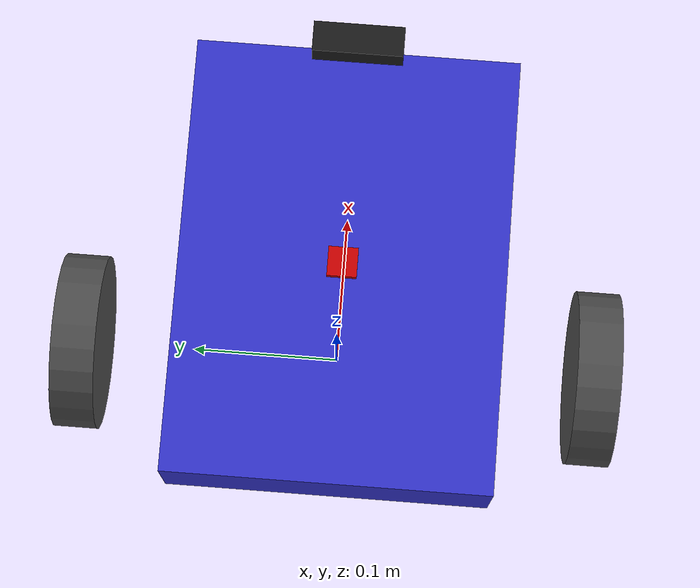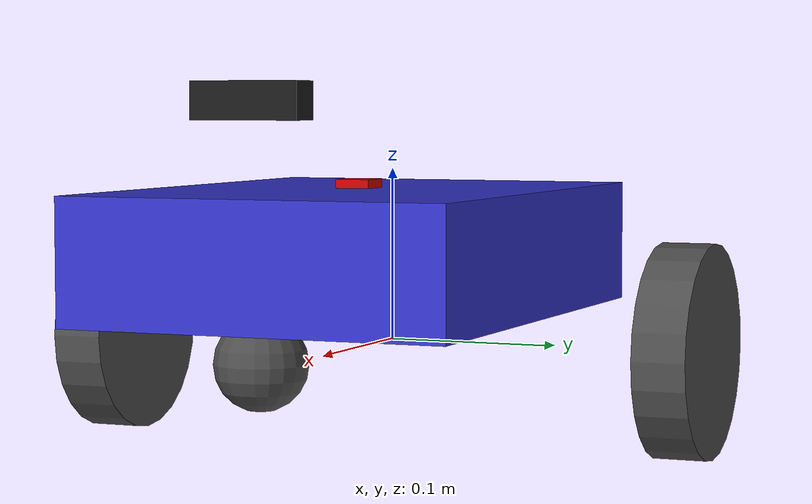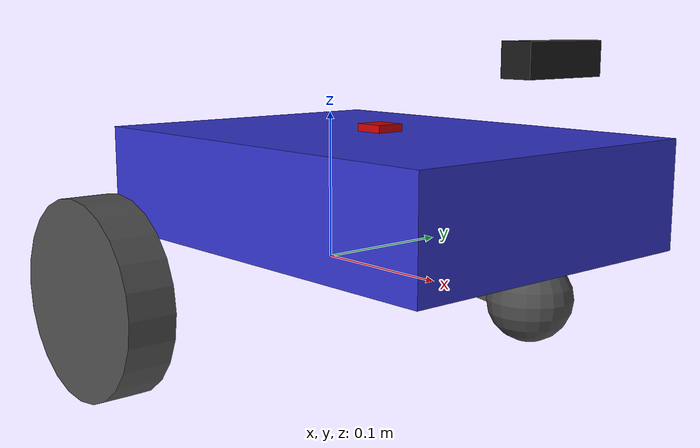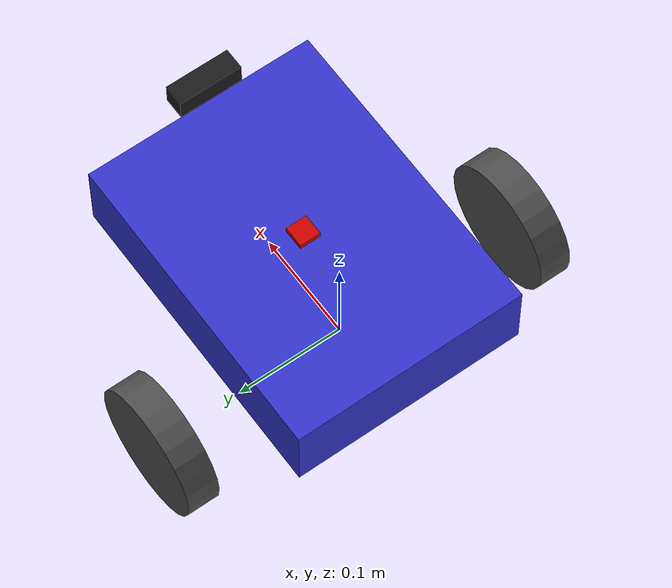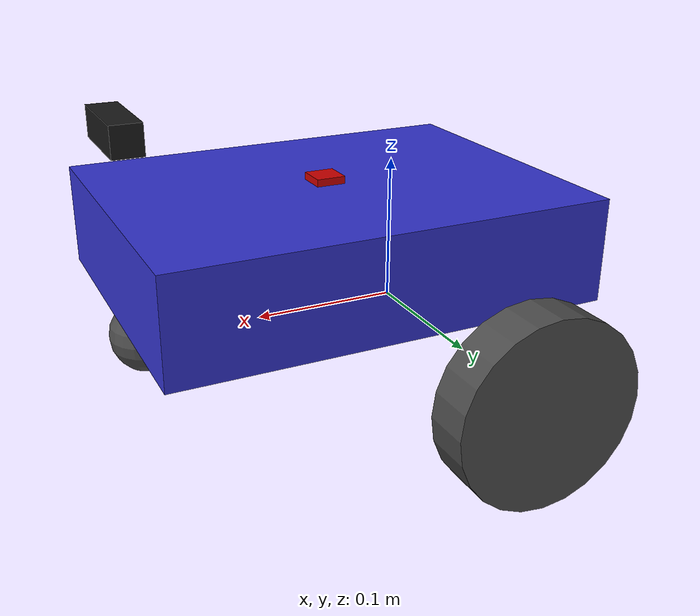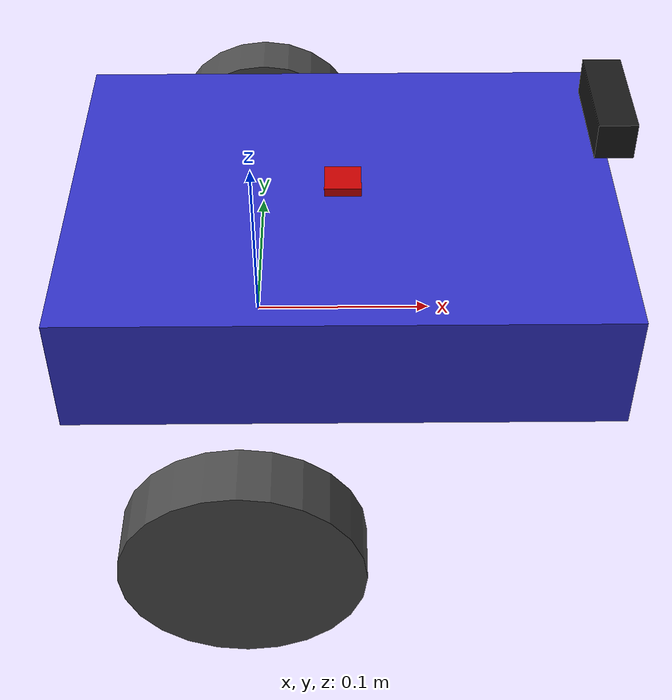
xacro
<?xml version="1.0"?>
<robot xmlns:xacro="http://www.ros.org/wiki/xacro" name="rover2">

  <!--
    Rover2 Simulation URDF
    This file combines the base robot description with Gazebo simulation plugins.
    Use this for Gazebo simulation.
  -->

  <!-- Robot parameters (must be defined before including other files) -->
  <xacro:property name="wheel_radius" value="0.06065"/>
  <xacro:property name="wheel_separation" value="0.356"/>

  <!-- Include base robot description -->
  <xacro:include filename="$(find rover2_description)/urdf/rover2.urdf.xacro"/>

  <!-- Include Gazebo plugins for simulation -->
  <xacro:include filename="$(find rover2_description)/urdf/rover2.gazebo.xacro"/>

</robot>

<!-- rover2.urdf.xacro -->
<robot xmlns:xacro="http://www.ros.org/wiki/xacro" name="rover2">

  <!-- Include macros -->
  <xacro:include filename="$(find rover2_description)/urdf/materials.xacro"/>
  <xacro:include filename="$(find rover2_description)/urdf/inertial_macros.xacro"/>

  <!-- ==================== PARAMETERS ==================== -->

  <!-- Wheel parameters (from Viam Rover 2 spec) -->
  <xacro:property name="wheel_radius" value="0.06065"/>      <!-- 121.3mm diameter / 2 -->
  <xacro:property name="wheel_width" value="0.03"/>          <!-- 30mm wheel width -->
  <xacro:property name="wheel_separation" value="0.356"/>    <!-- 356mm track width -->
  <xacro:property name="wheel_mass" value="0.2"/>            <!-- Estimated wheel mass -->

  <!-- Chassis parameters -->
  <xacro:property name="chassis_length" value="0.295"/>      <!-- 29.5cm -->
  <xacro:property name="chassis_width" value="0.22"/>        <!-- 22cm -->
  <xacro:property name="chassis_height" value="0.07"/>       <!-- 7cm -->
  <xacro:property name="chassis_mass" value="2.5"/>          <!-- Estimated total mass -->

  <!-- Chassis position relative to base_link (wheel axis center) -->
  <xacro:property name="chassis_x_offset" value="0.05"/>     <!-- Chassis center forward of wheel axis -->
  <xacro:property name="chassis_z_offset" value="0.02"/>     <!-- Chassis bottom above wheel axis -->

  <!-- Caster parameters -->
  <xacro:property name="caster_radius" value="0.025"/>       <!-- Small caster wheel -->
  <xacro:property name="caster_x_offset" value="0.12"/>      <!-- Caster in front of chassis -->
  <xacro:property name="caster_mass" value="0.1"/>

  <!-- Camera parameters -->
  <xacro:property name="camera_x" value="0.14"/>             <!-- Front of chassis -->
  <xacro:property name="camera_z" value="0.05"/>             <!-- Above chassis -->

  <!-- IMU parameters -->
  <xacro:property name="imu_x" value="0.0"/>
  <xacro:property name="imu_z" value="0.04"/>

  <!-- ==================== BASE LINK ==================== -->

  <!-- Base link at center of wheel axis (ground projection) -->
  <link name="base_link"/>

  <!-- Base footprint for navigation (on ground plane) -->
  <link name="base_footprint"/>

  <joint name="base_footprint_joint" type="fixed">
    <parent link="base_link"/>
    <child link="base_footprint"/>
    <origin xyz="0 0 ${-wheel_radius}" rpy="0 0 0"/>
  </joint>

  <!-- ==================== CHASSIS ==================== -->

  <link name="chassis">
    <visual>
      <geometry>
        <box size="${chassis_length} ${chassis_width} ${chassis_height}"/>
      </geometry>
      <material name="blue"/>
    </visual>
    <collision>
      <geometry>
        <box size="${chassis_length} ${chassis_width} ${chassis_height}"/>
      </geometry>
    </collision>
    <xacro:box_inertia m="${chassis_mass}" x="${chassis_length}" y="${chassis_width}" z="${chassis_height}"/>
  </link>

  <joint name="chassis_joint" type="fixed">
    <parent link="base_link"/>
    <child link="chassis"/>
    <origin xyz="${chassis_x_offset} 0 ${chassis_z_offset + chassis_height/2}" rpy="0 0 0"/>
  </joint>

  <!-- ==================== WHEEL MACRO ==================== -->

  <xacro:macro name="wheel" params="prefix y_reflect">
    <link name="${prefix}_wheel">
      <visual>
        <geometry>
          <cylinder radius="${wheel_radius}" length="${wheel_width}"/>
        </geometry>
        <origin xyz="0 0 0" rpy="${pi/2} 0 0"/>
        <material name="dark_grey"/>
      </visual>
      <collision>
        <geometry>
          <cylinder radius="${wheel_radius}" length="${wheel_width}"/>
        </geometry>
        <origin xyz="0 0 0" rpy="${pi/2} 0 0"/>
      </collision>
      <xacro:cylinder_inertia m="${wheel_mass}" r="${wheel_radius}" h="${wheel_width}"/>
    </link>

    <joint name="${prefix}_wheel_joint" type="continuous">
      <parent link="base_link"/>
      <child link="${prefix}_wheel"/>
      <origin xyz="0 ${y_reflect * wheel_separation/2} 0" rpy="0 0 0"/>
      <axis xyz="0 1 0"/>
      <dynamics damping="0.1" friction="0.1"/>
    </joint>
  </xacro:macro>

  <!-- Instantiate wheels -->
  <xacro:wheel prefix="left" y_reflect="1"/>
  <xacro:wheel prefix="right" y_reflect="-1"/>

  <!-- ==================== CASTER WHEEL ==================== -->

  <!-- Caster mount (allows rotation) -->
  <link name="caster_mount">
    <visual>
      <geometry>
        <cylinder radius="0.01" length="0.02"/>
      </geometry>
      <material name="dark_grey"/>
    </visual>
    <collision>
      <geometry>
        <cylinder radius="0.01" length="0.02"/>
      </geometry>
    </collision>
    <xacro:cylinder_inertia m="0.05" r="0.01" h="0.02"/>
  </link>

  <joint name="caster_mount_joint" type="fixed">
    <parent link="chassis"/>
    <child link="caster_mount"/>
    <origin xyz="${chassis_length/2 - 0.02} 0 ${-chassis_height/2 - 0.01}" rpy="0 0 0"/>
  </joint>

  <!-- Caster wheel (sphere approximation for better simulation) -->
  <link name="caster_wheel">
    <visual>
      <geometry>
        <sphere radius="${caster_radius}"/>
      </geometry>
      <material name="dark_grey"/>
    </visual>
    <collision>
      <geometry>
        <sphere radius="${caster_radius}"/>
      </geometry>
    </collision>
    <xacro:sphere_inertia m="${caster_mass}" r="${caster_radius}"/>
  </link>

  <joint name="caster_wheel_joint" type="fixed">
    <parent link="caster_mount"/>
    <child link="caster_wheel"/>
    <origin xyz="0 0 ${-caster_radius - 0.01 - (wheel_radius - chassis_z_offset - chassis_height/2 - 0.01 - caster_radius)}" rpy="0 0 0"/>
  </joint>

  <!-- ==================== IMU ==================== -->

  <link name="imu_link">
    <visual>
      <geometry>
        <box size="0.02 0.02 0.005"/>
      </geometry>
      <material name="red"/>
    </visual>
    <collision>
      <geometry>
        <box size="0.02 0.02 0.005"/>
      </geometry>
    </collision>
    <xacro:box_inertia m="0.01" x="0.02" y="0.02" z="0.005"/>
  </link>

  <joint name="imu_joint" type="fixed">
    <parent link="chassis"/>
    <child link="imu_link"/>
    <origin xyz="${imu_x} 0 ${chassis_height/2 + 0.003}" rpy="0 0 0"/>
  </joint>

  <!-- ==================== CAMERA ==================== -->

  <link name="camera_link">
    <visual>
      <geometry>
        <box size="0.02 0.06 0.02"/>
      </geometry>
      <material name="black"/>
    </visual>
    <collision>
      <geometry>
        <box size="0.02 0.06 0.02"/>
      </geometry>
    </collision>
    <xacro:box_inertia m="0.05" x="0.02" y="0.06" z="0.02"/>
  </link>

  <joint name="camera_joint" type="fixed">
    <parent link="chassis"/>
    <child link="camera_link"/>
    <origin xyz="${chassis_length/2 - 0.01} 0 ${chassis_height/2 + camera_z}" rpy="0 0 0"/>
  </joint>

  <!-- Camera optical frame (rotated per ROS convention: Z forward, X right, Y down) -->
  <link name="camera_optical_frame"/>

  <joint name="camera_optical_joint" type="fixed">
    <parent link="camera_link"/>
    <child link="camera_optical_frame"/>
    <origin xyz="0 0 0" rpy="${-pi/2} 0 ${-pi/2}"/>
  </joint>

</robot>

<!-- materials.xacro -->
<robot xmlns:xacro="http://www.ros.org/wiki/xacro">

  <!-- Color definitions for visualization -->

  <material name="white">
    <color rgba="1.0 1.0 1.0 1.0"/>
  </material>

  <material name="black">
    <color rgba="0.1 0.1 0.1 1.0"/>
  </material>

  <material name="dark_grey">
    <color rgba="0.3 0.3 0.3 1.0"/>
  </material>

  <material name="light_grey">
    <color rgba="0.6 0.6 0.6 1.0"/>
  </material>

  <material name="blue">
    <color rgba="0.2 0.2 0.8 1.0"/>
  </material>

  <material name="orange">
    <color rgba="1.0 0.4 0.0 1.0"/>
  </material>

  <material name="red">
    <color rgba="0.8 0.0 0.0 1.0"/>
  </material>

</robot>

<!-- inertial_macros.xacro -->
<robot xmlns:xacro="http://www.ros.org/wiki/xacro">

  <!-- Inertia calculation macros for common shapes -->

  <!-- Box inertia: mass m, dimensions x, y, z -->
  <xacro:macro name="box_inertia" params="m x y z">
    <inertial>
      <mass value="${m}"/>
      <inertia ixx="${(m/12)*(y*y+z*z)}" ixy="0.0" ixz="0.0"
               iyy="${(m/12)*(x*x+z*z)}" iyz="0.0"
               izz="${(m/12)*(x*x+y*y)}"/>
    </inertial>
  </xacro:macro>

  <!-- Cylinder inertia: mass m, radius r, length h (along z-axis) -->
  <xacro:macro name="cylinder_inertia" params="m r h">
    <inertial>
      <mass value="${m}"/>
      <inertia ixx="${(m/12)*(3*r*r+h*h)}" ixy="0.0" ixz="0.0"
               iyy="${(m/12)*(3*r*r+h*h)}" iyz="0.0"
               izz="${(m/2)*r*r}"/>
    </inertial>
  </xacro:macro>

  <!-- Sphere inertia: mass m, radius r -->
  <xacro:macro name="sphere_inertia" params="m r">
    <inertial>
      <mass value="${m}"/>
      <inertia ixx="${(2/5)*m*r*r}" ixy="0.0" ixz="0.0"
               iyy="${(2/5)*m*r*r}" iyz="0.0"
               izz="${(2/5)*m*r*r}"/>
    </inertial>
  </xacro:macro>

  <!-- Box inertia with origin offset -->
  <xacro:macro name="box_inertia_with_origin" params="m x y z ox oy oz">
    <inertial>
      <mass value="${m}"/>
      <origin xyz="${ox} ${oy} ${oz}" rpy="0 0 0"/>
      <inertia ixx="${(m/12)*(y*y+z*z)}" ixy="0.0" ixz="0.0"
               iyy="${(m/12)*(x*x+z*z)}" iyz="0.0"
               izz="${(m/12)*(x*x+y*y)}"/>
    </inertial>
  </xacro:macro>

  <!-- Cylinder inertia with origin offset -->
  <xacro:macro name="cylinder_inertia_with_origin" params="m r h ox oy oz">
    <inertial>
      <mass value="${m}"/>
      <origin xyz="${ox} ${oy} ${oz}" rpy="0 0 0"/>
      <inertia ixx="${(m/12)*(3*r*r+h*h)}" ixy="0.0" ixz="0.0"
               iyy="${(m/12)*(3*r*r+h*h)}" iyz="0.0"
               izz="${(m/2)*r*r}"/>
    </inertial>
  </xacro:macro>

</robot>
